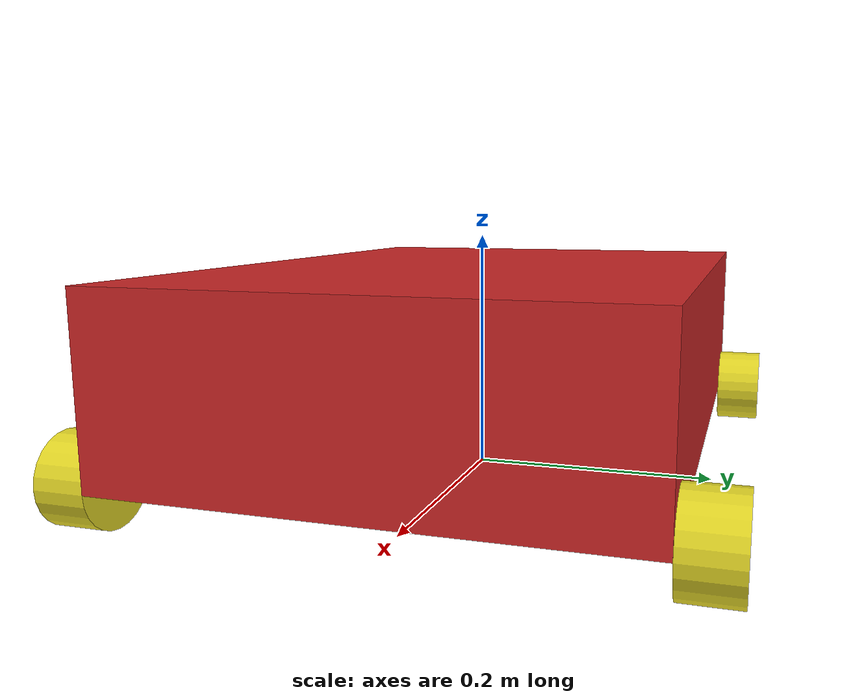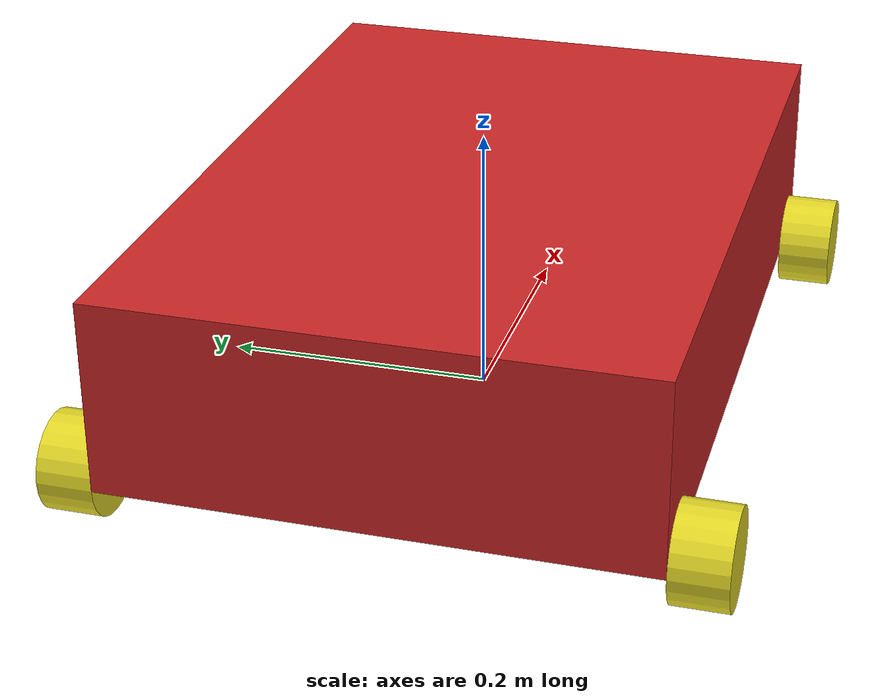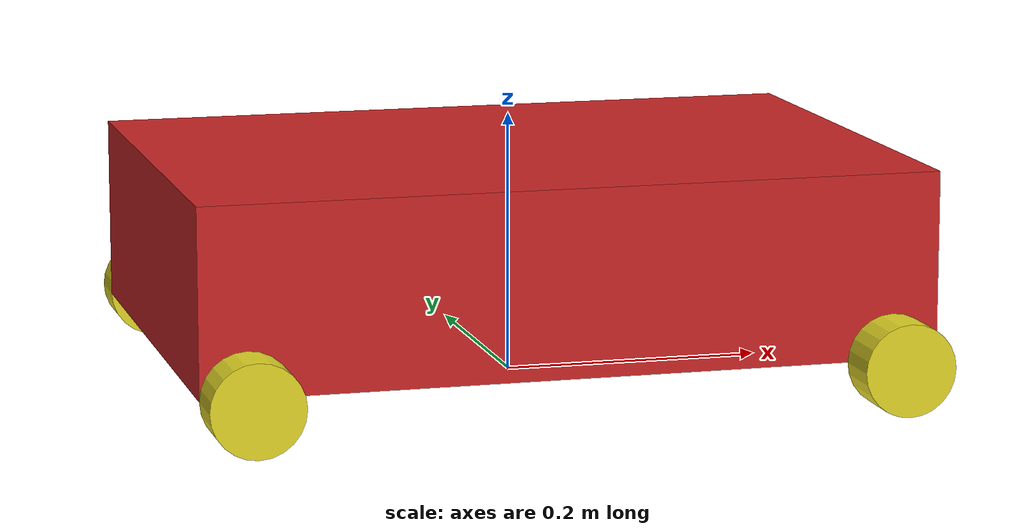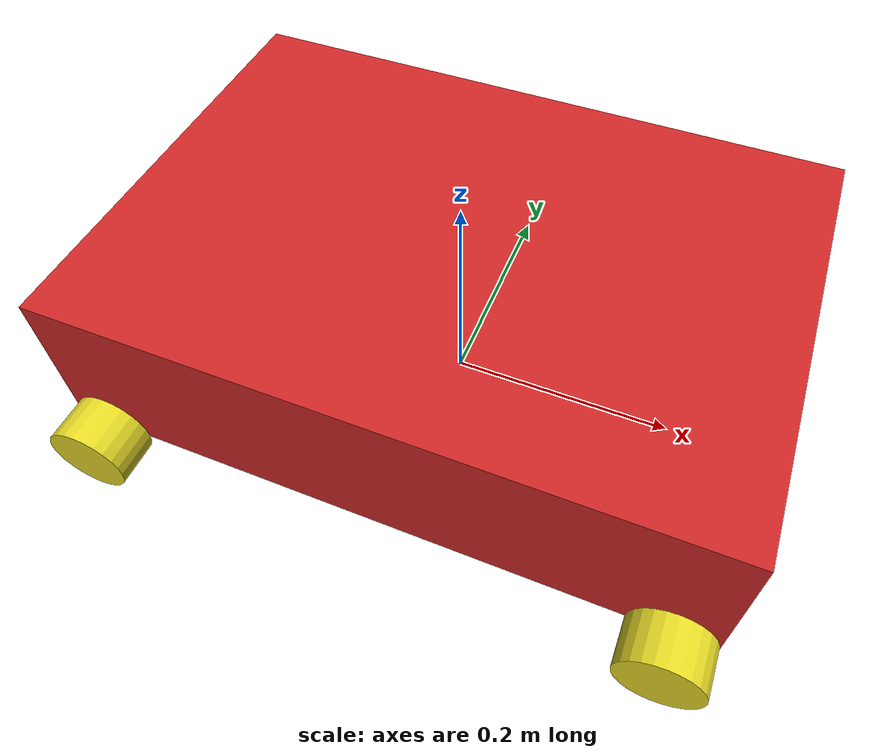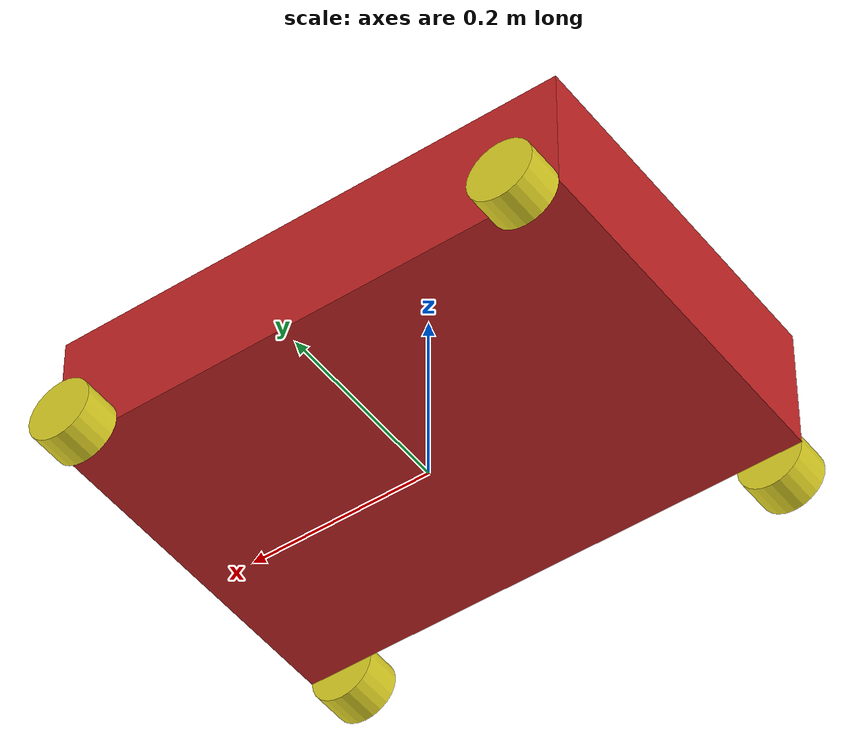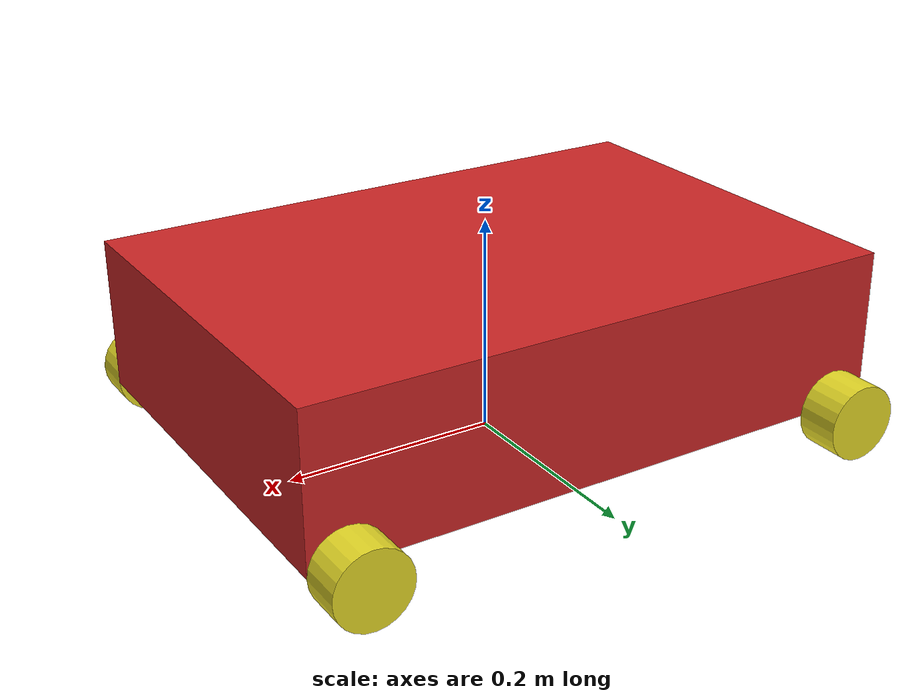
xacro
<?xml version="1.0" ?>
<robot name="robot" xmlns:xacro="http://www.ros.org/wiki/xacro">

<!-- Geometry and Constants -->
<xacro:property name="pi_const" value="3.14159265"/>

<!-- Body Dimensions -->
<xacro:property name="a" value="0.55663" />   <!-- length (x) -->
<xacro:property name="b" value="0.14044" />   <!-- height (z) -->
<xacro:property name="c" value="0.388"   />   <!-- width  (y) -->

<!-- Wheel Dimensions -->
<xacro:property name="r" value="0.035" />     <!-- wheel radius -->
<xacro:property name="d" value="0.04"  />     <!-- wheel thickness -->

<!-- Offsets -->
<xacro:property name="s1" value="${b/2+r}"/>         <!-- body center z above ground -->
<xacro:property name="s2" value="${a/2-r}"/>         <!-- wheel x offset from body center (front/rear) -->
<xacro:property name="s4" value="${c/2+d/2}"/>       <!-- wheel y offset (left/right) -->

<!-- Material Density -->
<xacro:property name="d1" value="2710.0"/>   <!-- body (aluminium) -->
<xacro:property name="d2" value="2710.0"/>   <!-- wheel -->

<!-- Mass -->
<xacro:property name="m1" value="${d1*a*b*c}"/>              <!-- body mass -->
<xacro:property name="m2" value="${d2*pi_const*r*r*d}"/>     <!-- wheel mass (fixed: added *d) -->

<!-- Body Inertia -->
<xacro:property name="Ix_body" value="${(1/12)*m1*(b*b+c*c)}"/>
<xacro:property name="Iy_body" value="${(1/12)*m1*(a*a+b*b)}"/>
<xacro:property name="Iz_body" value="${(1/12)*m1*(a*a+c*c)}"/>

<!-- Wheel Inertia -->
<xacro:property name="Iz_wheel" value="${0.5*m2*r*r}"/>
<xacro:property name="I_wheel"  value="${(1.0/12.0)*m2*(3.0*r*r+d*d)}"/>

<!-- Inertia macro: body -->
<xacro:macro name="inertia_body">
    <inertial>
        <origin rpy="0 0 0" xyz="0 0 0"/>
        <mass value="${m1}"/>
        <inertia ixx="${Ix_body}" ixy="0.0" ixz="0.0"
                 iyy="${Iy_body}" iyz="0.0"
                 izz="${Iz_body}"/>
    </inertial>
</xacro:macro>

<!-- Inertia macro: wheel -->
<xacro:macro name="inertia_wheel">
    <inertial>
        <origin rpy="1.570795 0 0" xyz="0 0 0"/>
        <mass value="${m2}"/>
        <inertia ixx="${I_wheel}" ixy="0.0" ixz="0.0"
                 iyy="${I_wheel}" iyz="0.0"
                 izz="${Iz_wheel}"/>
    </inertial>
</xacro:macro>

<!-- Include Gazebo file -->
<xacro:include filename="$(find mobile_robot)/model/robot.gazebo"/>

<!-- Fictitious base link -->
<link name="base_footprint"/>

<!-- base_footprint -> body_link (fixed, lifts body above ground) -->
<joint name="body_link_joint" type="fixed">
    <parent link="base_footprint"/>
    <child  link="body_link"/>
    <origin xyz="0 0 ${s1}" rpy="0 0 0"/>   <!-- fixed: body now sits above ground -->
</joint>

<!-- Body link -->
<link name="body_link">
    <visual>
        <origin rpy="0 0 0" xyz="0 0 0"/>
        <geometry>
            <box size="${a} ${c} ${b}"/>
        </geometry>
    </visual>
    <collision>
        <origin rpy="0 0 0" xyz="0 0 0"/>
        <geometry>
            <box size="${a} ${c} ${b}"/>
        </geometry>
    </collision>
    <xacro:inertia_body/>
</link>

<!-- Wheel 1 - front left -->
<joint name="wheel1_joint" type="continuous">
    <parent link="body_link"/>
    <child  link="wheel1_link"/>
    <origin xyz="${-s2} ${-s4} ${-b/2}" rpy="0 0 0"/>   <!-- bottom of body, front, left -->
    <axis xyz="0 1 0"/>
    <limit effort="50000" velocity="10"/>
    <dynamics damping="1.0" friction="1.0"/>
</joint>

<link name="wheel1_link">
    <visual>
        <origin rpy="1.570795 0 0" xyz="0 0 0"/>
        <geometry>
            <cylinder length="${d}" radius="${r}"/>
        </geometry>
    </visual>
    <collision>
        <origin rpy="1.570795 0 0" xyz="0 0 0"/>
        <geometry>
            <cylinder length="${d}" radius="${r}"/>
        </geometry>
    </collision>
    <xacro:inertia_wheel/>
</link>

<!-- Wheel 2 - front right -->
<joint name="wheel2_joint" type="continuous">
    <parent link="body_link"/>
    <child  link="wheel2_link"/>
    <origin xyz="${-s2} ${s4} ${-b/2}" rpy="0 0 0"/>
    <axis xyz="0 1 0"/>
    <limit effort="50000" velocity="10"/>
    <dynamics damping="1.0" friction="1.0"/>
</joint>

<link name="wheel2_link">
    <visual>
        <origin rpy="1.570795 0 0" xyz="0 0 0"/>
        <geometry>
            <cylinder length="${d}" radius="${r}"/>
        </geometry>
    </visual>
    <collision>
        <origin rpy="1.570795 0 0" xyz="0 0 0"/>
        <geometry>
            <cylinder length="${d}" radius="${r}"/>
        </geometry>
    </collision>
    <xacro:inertia_wheel/>
</link>

<!-- Wheel 3 - rear left -->
<joint name="wheel3_joint" type="continuous">
    <parent link="body_link"/>
    <child  link="wheel3_link"/>
    <origin xyz="${s2} ${-s4} ${-b/2}" rpy="0 0 0"/>
    <axis xyz="0 1 0"/>
    <limit effort="50000" velocity="10"/>
    <dynamics damping="1.0" friction="1.0"/>
</joint>

<link name="wheel3_link">
    <visual>
        <origin rpy="1.570795 0 0" xyz="0 0 0"/>
        <geometry>
            <cylinder length="${d}" radius="${r}"/>
        </geometry>
    </visual>
    <collision>
        <origin rpy="1.570795 0 0" xyz="0 0 0"/>
        <geometry>
            <cylinder length="${d}" radius="${r}"/>
        </geometry>
    </collision>
    <xacro:inertia_wheel/>
</link>

<!-- Wheel 4 - rear right -->
<joint name="wheel4_joint" type="continuous">
    <parent link="body_link"/>
    <child  link="wheel4_link"/>
    <origin xyz="${s2} ${s4} ${-b/2}" rpy="0 0 0"/>
    <axis xyz="0 1 0"/>
    <limit effort="50000" velocity="10"/>
    <dynamics damping="1.0" friction="1.0"/>
</joint>

<link name="wheel4_link">
    <visual>
        <origin rpy="1.570795 0 0" xyz="0 0 0"/>
        <geometry>
            <cylinder length="${d}" radius="${r}"/>
        </geometry>
    </visual>
    <collision>
        <origin rpy="1.570795 0 0" xyz="0 0 0"/>
        <geometry>
            <cylinder length="${d}" radius="${r}"/>
        </geometry>
    </collision>
    <xacro:inertia_wheel/>
</link>

</robot>
